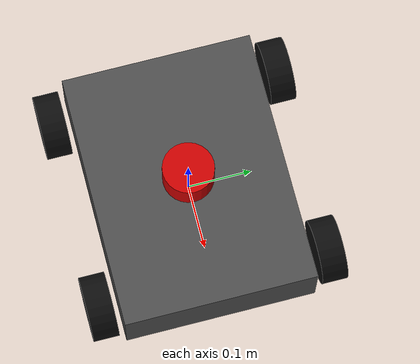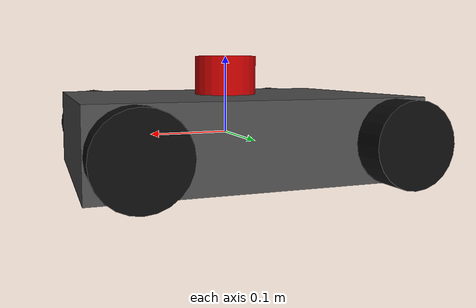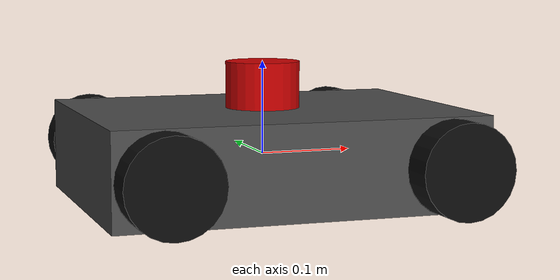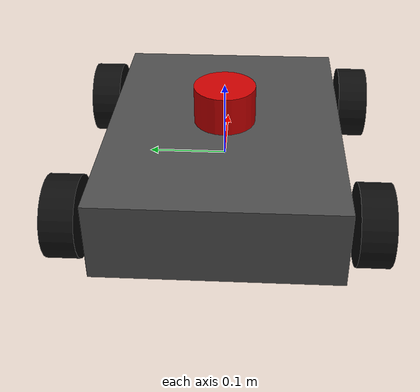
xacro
<?xml version="1.0"?>
<robot name="mecanum_bot" xmlns:xacro="http://www.ros.org/wiki/xacro">

  <!-- ================= PARAMETERS ================= -->
  <xacro:property name="chassis_length" value="0.40"/>
  <xacro:property name="chassis_width"  value="0.30"/>
  <xacro:property name="chassis_height" value="0.10"/>
  <xacro:property name="chassis_mass"   value="5.0"/>

  <xacro:property name="wheel_radius"   value="0.05"/>
  <xacro:property name="wheel_width"    value="0.04"/>
  <xacro:property name="wheel_mass"     value="0.5"/>

  <xacro:property name="wheel_x_offset" value="0.15"/>
  <xacro:property name="wheel_y_offset" value="0.18"/>
  <xacro:property name="wheel_z_offset" value="0.0"/>

  <xacro:property name="lidar_radius"   value="0.04"/>
  <xacro:property name="lidar_height"   value="0.05"/>

  <material name="chassis_grey"><color rgba="0.3 0.3 0.3 1.0"/></material>
  <material name="wheel_black"><color rgba="0.05 0.05 0.05 1.0"/></material>
  <material name="lidar_red"><color rgba="0.8 0.0 0.0 1.0"/></material>
  <!-- ================= INERTIA MACROS ================= -->
  <xacro:macro name="box_inertia" params="mass x y z">
    <inertia ixx="${mass/12.0*(y*y+z*z)}" ixy="0.0" ixz="0.0"
             iyy="${mass/12.0*(x*x+z*z)}" iyz="0.0"
             izz="${mass/12.0*(x*x+y*y)}"/>
  </xacro:macro>

  <xacro:macro name="cylinder_inertia" params="mass r h">
    <inertia ixx="${mass/12.0*(3*r*r+h*h)}" ixy="0.0" ixz="0.0"
             iyy="${mass/12.0*(3*r*r+h*h)}" iyz="0.0"
             izz="${mass/2.0*r*r}"/>
  </xacro:macro>

  <link name="base_link">
    <visual>
      <origin xyz="0 0 0" rpy="0 0 0"/>
      <geometry><box size="${chassis_length} ${chassis_width} ${chassis_height}"/></geometry>
      <material name="chassis_grey"/>
    </visual>
    <collision>
      <origin xyz="0 0 0" rpy="0 0 0"/>
      <geometry><box size="${chassis_length} ${chassis_width} ${chassis_height}"/></geometry>
    </collision>
    <inertial>
      <mass value="${chassis_mass}"/>
      <origin xyz="0 0 0" rpy="0 0 0"/>
      <xacro:box_inertia mass="${chassis_mass}" x="${chassis_length}" y="${chassis_width}" z="${chassis_height}"/>
    </inertial>
  </link>

  <gazebo reference="base_link">
    <material>Gazebo/Grey</material>
  </gazebo>
<!-- ================= WHEEL MACRO ================= -->
  <xacro:macro name="wheel" params="prefix x_reflect y_reflect">
    <link name="${prefix}_wheel_link">
      <visual>
        <origin xyz="0 0 0" rpy="${pi/2} 0 0"/>
        <geometry><cylinder radius="${wheel_radius}" length="${wheel_width}"/></geometry>
        <material name="wheel_black"/>
      </visual>
      <collision>
        <origin xyz="0 0 0" rpy="${pi/2} 0 0"/>
        <geometry><cylinder radius="${wheel_radius}" length="${wheel_width}"/></geometry>
      </collision>
      <inertial>
        <mass value="${wheel_mass}"/>
        <origin xyz="0 0 0" rpy="0 0 0"/>
        <xacro:cylinder_inertia mass="${wheel_mass}" r="${wheel_radius}" h="${wheel_width}"/>
      </inertial>
    </link>

    <joint name="${prefix}_wheel_joint" type="continuous">
      <parent link="base_link"/>
      <child link="${prefix}_wheel_link"/>
      <origin xyz="${x_reflect*wheel_x_offset} ${y_reflect*wheel_y_offset} ${wheel_z_offset}" rpy="0 0 0"/>
      <axis xyz="0 1 0"/>
      <dynamics damping="0.1" friction="0.05"/>
    </joint>

    <gazebo reference="${prefix}_wheel_link">
      <material>Gazebo/Black</material>
      <mu1>0.3</mu1>
      <mu2>0.3</mu2>
    </gazebo>
  </xacro:macro>

  <xacro:wheel prefix="front_left"  x_reflect="1"  y_reflect="1"/>
  <xacro:wheel prefix="front_right" x_reflect="1"  y_reflect="-1"/>
  <xacro:wheel prefix="rear_left"   x_reflect="-1" y_reflect="1"/>
<xacro:wheel prefix="rear_right" x_reflect="-1" y_reflect="-1"/>

  <!-- ================= LIDAR ================= -->
  <link name="lidar_link">
    <visual>
      <origin xyz="0 0 0" rpy="0 0 0"/>
      <geometry><cylinder radius="${lidar_radius}" length="${lidar_height}"/></geometry>
      <material name="lidar_red"/>
    </visual>
    <collision>
      <origin xyz="0 0 0" rpy="0 0 0"/>
      <geometry><cylinder radius="${lidar_radius}" length="${lidar_height}"/></geometry>
    </collision>
    <inertial>
      <mass value="0.1"/>
      <origin xyz="0 0 0" rpy="0 0 0"/>
      <xacro:cylinder_inertia mass="0.1" r="${lidar_radius}" h="${lidar_height}"/>
    </inertial>
  </link>

  <joint name="lidar_joint" type="fixed">
    <parent link="base_link"/>
    <child link="lidar_link"/>
    <origin xyz="0 0 ${chassis_height/2 + lidar_height/2}" rpy="0 0 0"/>
  </joint>

  <gazebo reference="lidar_link">
    <sensor name="lidar_sensor" type="gpu_lidar">
      <pose>0 0 0 0 0 0</pose>
      <topic>scan</topic>
      <update_rate>10</update_rate>
      <ray>
        <scan>
          <horizontal>
            <samples>360</samples>
            <resolution>1</resolution>
            <min_angle>-3.14159</min_angle>
            <max_angle>3.14159</max_angle>
          </horizontal>
        </scan>
        <range>
          <min>0.12</min>
          <max>10.0</max>
          <resolution>0.01</resolution>
        </range>
        <noise>
          <type>gaussian</type>
          <mean>0.0</mean>
          <stddev>0.01</stddev>
        </noise>
      </ray>
      <always_on>true</always_on>
      <visualize>true</visualize>
      <gz_frame_id>lidar_link</gz_frame_id>
    </sensor>
  </gazebo>

  <!-- ================= ros2_control ================= -->
  <ros2_control name="GazeboSystem" type="system">
    <hardware>
      <plugin>gz_ros2_control/GazeboSimSystem</plugin>
    </hardware>
    <joint name="front_left_wheel_joint">
      <command_interface name="velocity"/>
      <state_interface name="velocity"/>
      <state_interface name="position"/>
    </joint>
    <joint name="front_right_wheel_joint">
      <command_interface name="velocity"/>
      <state_interface name="velocity"/>
      <state_interface name="position"/>
    </joint>
    <joint name="rear_left_wheel_joint">
      <command_interface name="velocity"/>
      <state_interface name="velocity"/>
      <state_interface name="position"/>
    </joint>
    <joint name="rear_right_wheel_joint">
      <command_interface name="velocity"/>
      <state_interface name="velocity"/>
      <state_interface name="position"/>
    </joint>
  </ros2_control>

  <gazebo>
    <plugin filename="gz_ros2_control-system" name="gz_ros2_control::GazeboSimROS2ControlPlugin">
      <parameters>$(find mecanum_bot)/config/mecanum_controllers.yaml</parameters>
      <robot_param>robot_description</robot_param>
      <robot_param_node>robot_state_publisher</robot_param_node>
    </plugin>
  </gazebo>

</robot>
